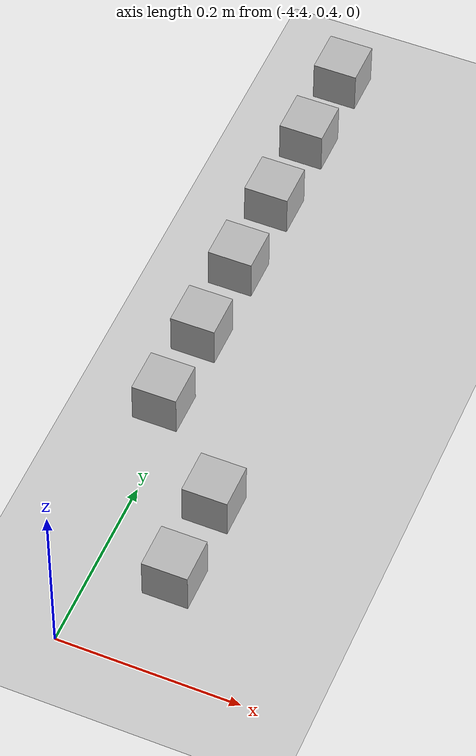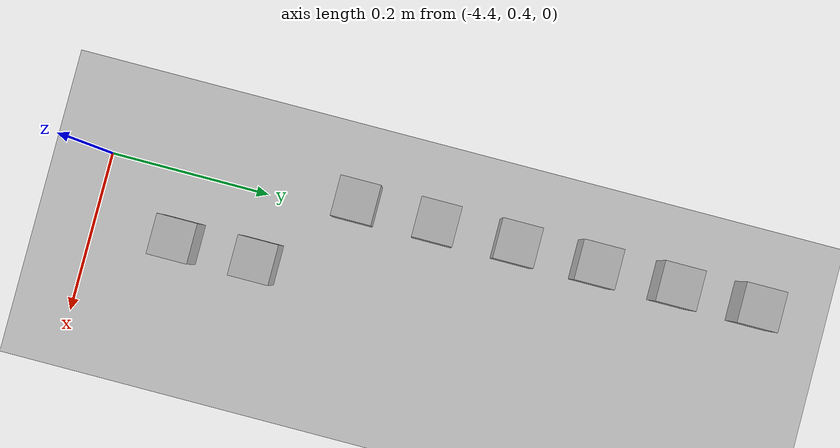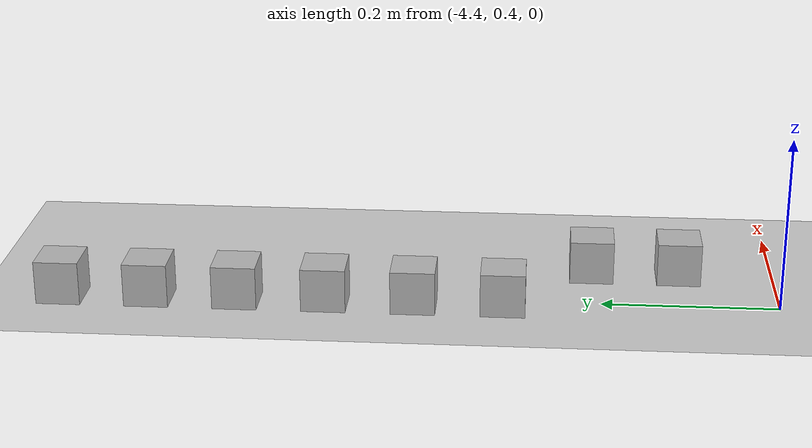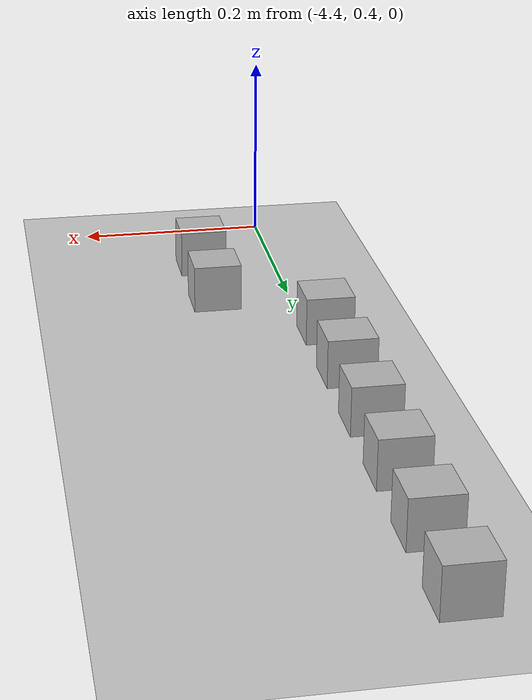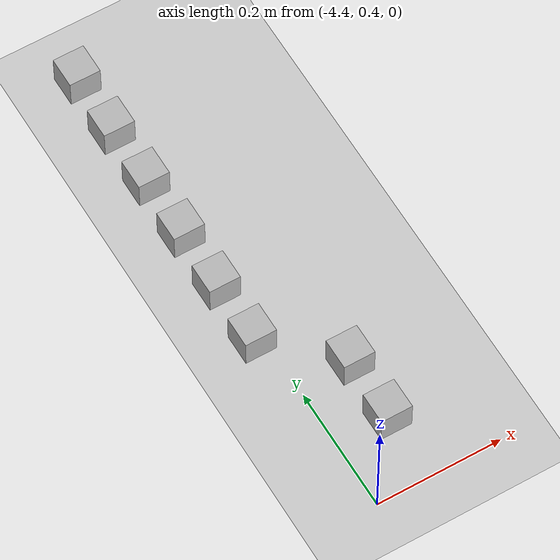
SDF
<sdf version="1.6">
 <world name="default">
  <model name="ground_plane">
   <static>1</static>
   <link name="link">
    <collision name="collision">
     <geometry><plane><normal>0 0 1</normal><size>100 100</size></plane></geometry>
     <surface><friction><ode><mu>100</mu><mu2>50</mu2></ode></friction></surface>
    </collision>
    <visual name="visual">
     <cast_shadows>0</cast_shadows>
     <geometry><plane><normal>0 0 1</normal><size>100 100</size></plane></geometry>
     <material>
      <script><uri>file://media/materials/scripts/gazebo.material</uri><name>Gazebo/Grey</name></script>
     </material>
    </visual>
   </link>
  </model>
  <model name="at7">
   <static>0</static>
   <link name="link">
    <inertial>
     <mass>0.01</mass>
     <inertia><ixx>4e-05</ixx><ixy>0</ixy><ixz>0</ixz><iyy>4e-05</iyy><iyz>0</iyz><izz>4e-05</izz></inertia>
    </inertial>
    <visual name="visual">
     <geometry><box><size>0.05 0.05 0.05</size></box></geometry>
     <material>
      <script>
       <uri>model://at0/materials/scripts</uri>
       <uri>model://at0/materials/textures</uri>
       <name>at0/Diffuse</name>
      </script>
     </material>
    </visual>
    <collision name="collision">
     <geometry><box><size>0.05 0.05 0.05</size></box></geometry>
     <surface><friction><ode><mu>0.8</mu><mu2>0.7</mu2></ode></friction></surface>
    </collision>
   </link>
   <pose>-4.31833 0.509652 0.025 0 -0 0</pose>
  </model>
  <model name="at15">
   <static>0</static>
   <link name="link">
    <inertial>
     <mass>0.01</mass>
     <inertia><ixx>4e-05</ixx><ixy>0</ixy><ixz>0</ixz><iyy>4e-05</iyy><iyz>0</iyz><izz>4e-05</izz></inertia>
    </inertial>
    <visual name="visual">
     <geometry><box><size>0.05 0.05 0.05</size></box></geometry>
     <material>
      <script>
       <uri>model://at0/materials/scripts</uri>
       <uri>model://at0/materials/textures</uri>
       <name>at0/Diffuse</name>
      </script>
     </material>
    </visual>
    <collision name="collision">
     <geometry><box><size>0.05 0.05 0.05</size></box></geometry>
     <surface><friction><ode><mu>0.8</mu><mu2>0.7</mu2></ode></friction></surface>
    </collision>
   </link>
   <pose>-4.31833 0.609652 0.025 0 -0 0</pose>
  </model>
  <model name="at22">
   <static>0</static>
   <link name="link">
    <inertial>
     <mass>0.01</mass>
     <inertia><ixx>4e-05</ixx><ixy>0</ixy><ixz>0</ixz><iyy>4e-05</iyy><iyz>0</iyz><izz>4e-05</izz></inertia>
    </inertial>
    <visual name="visual">
     <geometry><box><size>0.05 0.05 0.05</size></box></geometry>
     <material>
      <script>
       <uri>model://at0/materials/scripts</uri>
       <uri>model://at0/materials/textures</uri>
       <name>at0/Diffuse</name>
      </script>
     </material>
    </visual>
    <collision name="collision">
     <geometry><box><size>0.05 0.05 0.05</size></box></geometry>
     <surface><friction><ode><mu>0.8</mu><mu2>0.7</mu2></ode></friction></surface>
    </collision>
   </link>
   <pose>-4.41833 0.709652 0.025 0 -0 0</pose>
  </model>
  <model name="at30">
   <static>0</static>
   <link name="link">
    <inertial>
     <mass>0.01</mass>
     <inertia><ixx>4e-05</ixx><ixy>0</ixy><ixz>0</ixz><iyy>4e-05</iyy><iyz>0</iyz><izz>4e-05</izz></inertia>
    </inertial>
    <visual name="visual">
     <geometry><box><size>0.05 0.05 0.05</size></box></geometry>
     <material>
      <script>
       <uri>model://at0/materials/scripts</uri>
       <uri>model://at0/materials/textures</uri>
       <name>at0/Diffuse</name>
      </script>
     </material>
    </visual>
    <collision name="collision">
     <geometry><box><size>0.05 0.05 0.05</size></box></geometry>
     <surface><friction><ode><mu>0.8</mu><mu2>0.7</mu2></ode></friction></surface>
    </collision>
   </link>
   <pose>-4.41833 0.809652 0.025 0 -0 0</pose>
  </model>
  <model name="at38">
   <static>0</static>
   <link name="link">
    <inertial>
     <mass>0.01</mass>
     <inertia><ixx>4e-05</ixx><ixy>0</ixy><ixz>0</ixz><iyy>4e-05</iyy><iyz>0</iyz><izz>4e-05</izz></inertia>
    </inertial>
    <visual name="visual">
     <geometry><box><size>0.05 0.05 0.05</size></box></geometry>
     <material>
      <script>
       <uri>model://at0/materials/scripts</uri>
       <uri>model://at0/materials/textures</uri>
       <name>at0/Diffuse</name>
      </script>
     </material>
    </visual>
    <collision name="collision">
     <geometry><box><size>0.05 0.05 0.05</size></box></geometry>
     <surface><friction><ode><mu>0.8</mu><mu2>0.7</mu2></ode></friction></surface>
    </collision>
   </link>
   <pose>-4.41833 0.909652 0.025 0 -0 0</pose>
  </model>
  <model name="at46">
   <static>0</static>
   <link name="link">
    <inertial>
     <mass>0.01</mass>
     <inertia><ixx>4e-05</ixx><ixy>0</ixy><ixz>0</ixz><iyy>4e-05</iyy><iyz>0</iyz><izz>4e-05</izz></inertia>
    </inertial>
    <visual name="visual">
     <geometry><box><size>0.05 0.05 0.05</size></box></geometry>
     <material>
      <script>
       <uri>model://at0/materials/scripts</uri>
       <uri>model://at0/materials/textures</uri>
       <name>at0/Diffuse</name>
      </script>
     </material>
    </visual>
    <collision name="collision">
     <geometry><box><size>0.05 0.05 0.05</size></box></geometry>
     <surface><friction><ode><mu>0.8</mu><mu2>0.7</mu2></ode></friction></surface>
    </collision>
   </link>
   <pose>-4.41833 1.00965 0.025 0 -0 0</pose>
  </model>
  <model name="at54">
   <static>0</static>
   <link name="link">
    <inertial>
     <mass>0.01</mass>
     <inertia><ixx>4e-05</ixx><ixy>0</ixy><ixz>0</ixz><iyy>4e-05</iyy><iyz>0</iyz><izz>4e-05</izz></inertia>
    </inertial>
    <visual name="visual">
     <geometry><box><size>0.05 0.05 0.05</size></box></geometry>
     <material>
      <script>
       <uri>model://at0/materials/scripts</uri>
       <uri>model://at0/materials/textures</uri>
       <name>at0/Diffuse</name>
      </script>
     </material>
    </visual>
    <collision name="collision">
     <geometry><box><size>0.05 0.05 0.05</size></box></geometry>
     <surface><friction><ode><mu>0.8</mu><mu2>0.7</mu2></ode></friction></surface>
    </collision>
   </link>
   <pose>-4.41833 1.10965 0.025 0 -0 0</pose>
  </model>
  <model name="at62">
   <static>0</static>
   <link name="link">
    <inertial>
     <mass>0.01</mass>
     <inertia><ixx>4e-05</ixx><ixy>0</ixy><ixz>0</ixz><iyy>4e-05</iyy><iyz>0</iyz><izz>4e-05</izz></inertia>
    </inertial>
    <visual name="visual">
     <geometry><box><size>0.05 0.05 0.05</size></box></geometry>
     <material>
      <script>
       <uri>model://at0/materials/scripts</uri>
       <uri>model://at0/materials/textures</uri>
       <name>at0/Diffuse</name>
      </script>
     </material>
    </visual>
    <collision name="collision">
     <geometry><box><size>0.05 0.05 0.05</size></box></geometry>
     <surface><friction><ode><mu>0.8</mu><mu2>0.7</mu2></ode></friction></surface>
    </collision>
   </link>
   <pose>-4.41833 1.20965 0.025 0 -0 0</pose>
  </model>
 </world>
</sdf>
